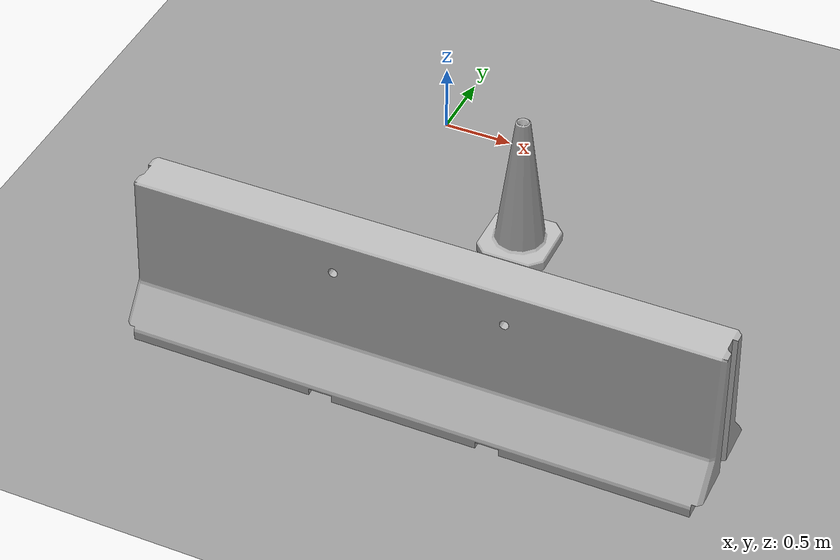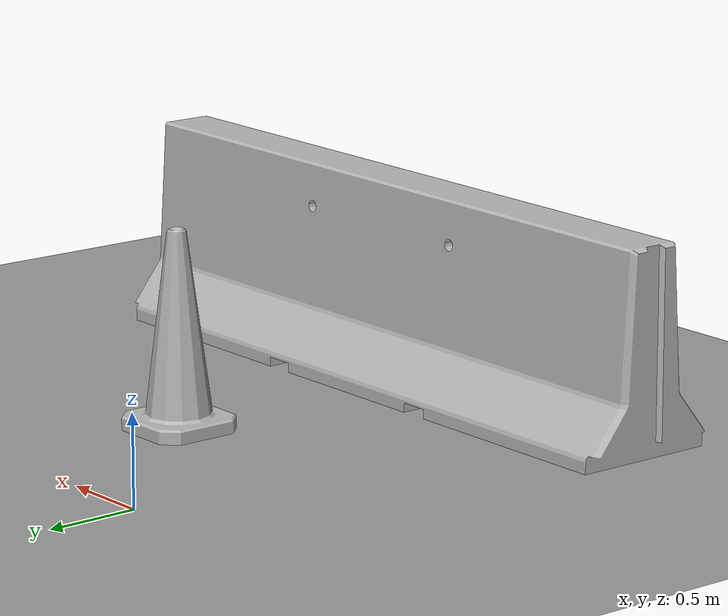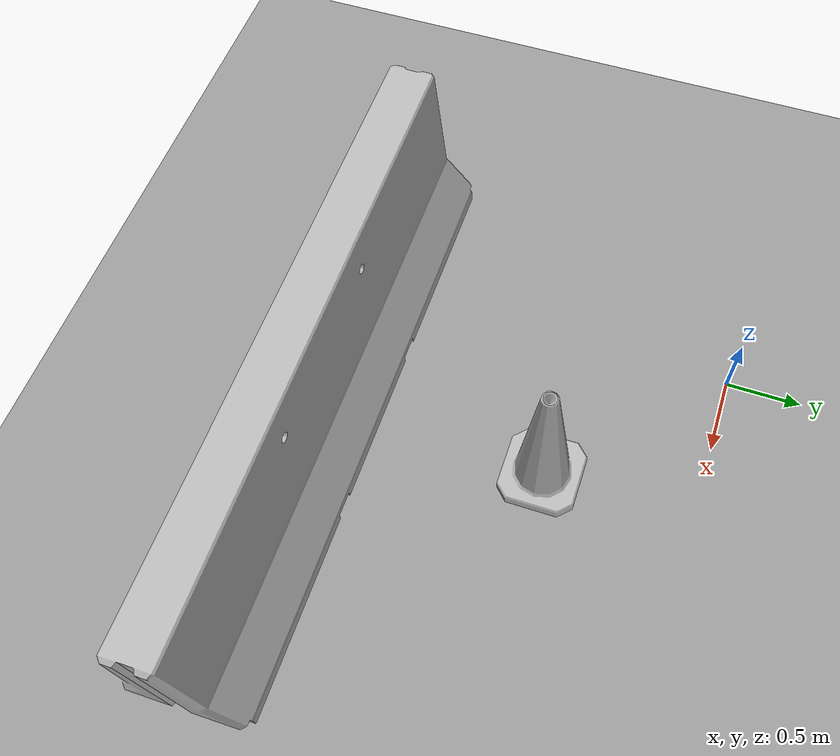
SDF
<sdf version="1.4">
 <world name="default">
  <model name="ground_plane_0">
   <static>1</static>
   <link name="link">
    <collision name="collision">
     <geometry><plane><normal>0 0 1</normal><size>100 100</size></plane></geometry>
     <surface><friction><ode><mu>100</mu><mu2>50</mu2></ode></friction></surface>
    </collision>
    <visual name="visual">
     <cast_shadows>0</cast_shadows>
     <geometry><plane><normal>0 0 1</normal><size>100 100</size></plane></geometry>
     <material>
      <script><uri>file://media/materials/scripts/gazebo.material</uri><name>Gazebo/Grey</name></script>
     </material>
    </visual>
    <velocity_decay><linear>0</linear><angular>0</angular></velocity_decay>
   </link>
   <pose>0.497681 0 0 0 -0 0</pose>
  </model>
  <model name="jersey_barrier_2">
   <static>1</static>
   <link name="link">
    <visual name="visual">
     <geometry><mesh><uri>model://jersey_barrier/meshes/jersey_barrier.dae</uri></mesh></geometry>
    </visual>
    <collision name="upright">
     <pose>0 0 0.5715 0 -0 0</pose>
     <geometry><box><size>4.06542 0.3063 1.143</size></box></geometry>
    </collision>
    <collision name="base">
     <pose>0 0 0.032258 0 -0 0</pose>
     <geometry><box><size>4.06542 0.8107 0.064516</size></box></geometry>
    </collision>
    <collision name="base2">
     <pose>0 0 0.1 0 -0 0</pose>
     <geometry><box><size>4.06542 0.65 0.1</size></box></geometry>
    </collision>
    <collision name="base3">
     <pose>0 0 0.2 0 -0 0</pose>
     <geometry><box><size>4.06542 0.5 0.1</size></box></geometry>
    </collision>
    <collision name="left-angle">
     <pose>0 -0.224 0.2401 0.9 -0 0</pose>
     <geometry><box><size>4.06542 0.5 0.064516</size></box></geometry>
    </collision>
    <collision name="right-angle">
     <pose>0 0.224 0.2401 -0.9 0 0</pose>
     <geometry><box><size>4.06542 0.5 0.064516</size></box></geometry>
    </collision>
    <velocity_decay><linear>0</linear><angular>0</angular></velocity_decay>
   </link>
   <pose>1 -2.52771 0 0 -0 0</pose>
  </model>
  <model name="Construction Cone_0">
   <link name="link">
    <collision name="collision">
     <geometry>
      <mesh><scale>10 10 10</scale><uri>model://construction_cone/meshes/construction_cone.dae</uri></mesh>
     </geometry>
    </collision>
    <visual name="visual">
     <geometry>
      <mesh><scale>10 10 10</scale><uri>model://construction_cone/meshes/construction_cone.dae</uri></mesh>
     </geometry>
    </visual>
    <velocity_decay><linear>0</linear><angular>0</angular></velocity_decay>
    <inertial>
     <inertia><ixx>1</ixx><ixy>0</ixy><ixz>0</ixz><iyy>1</iyy><iyz>0</iyz><izz>1</izz></inertia>
     <mass>1</mass>
    </inertial>
   </link>
   <pose>1 -1 -0.000925 -0.000124 7.1e-05 -1e-06</pose>
   <static>0</static>
  </model>
 </world>
</sdf>
